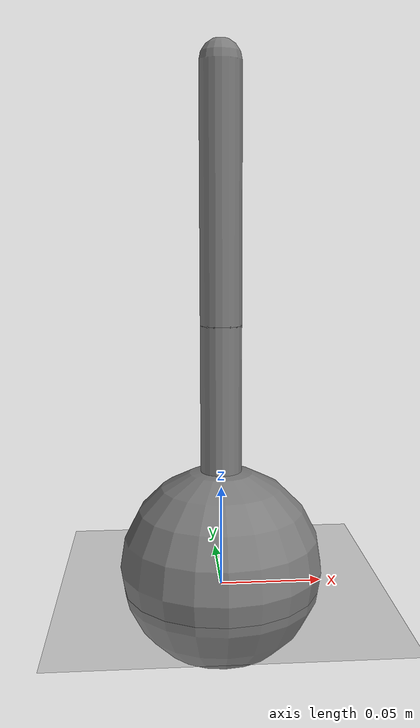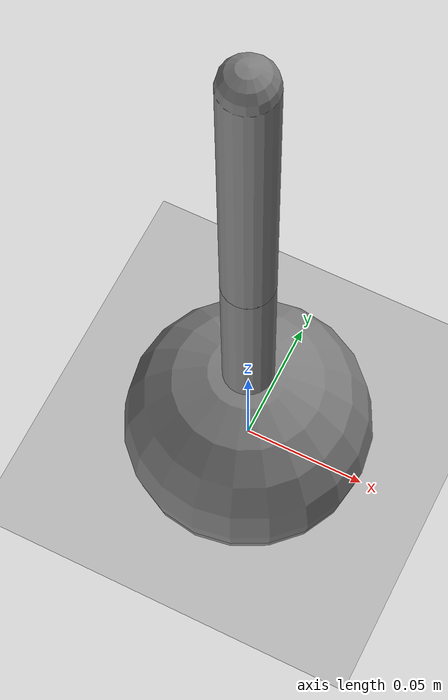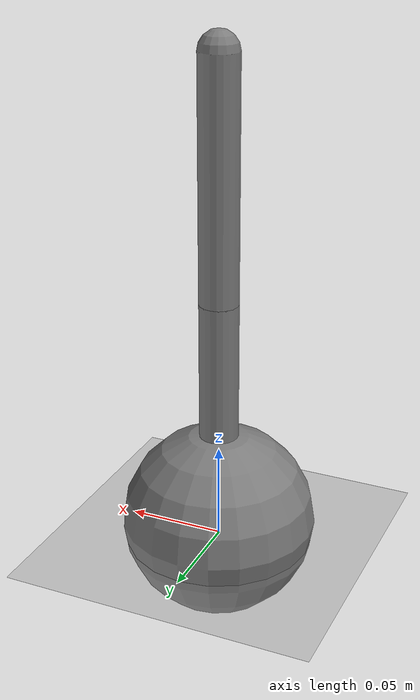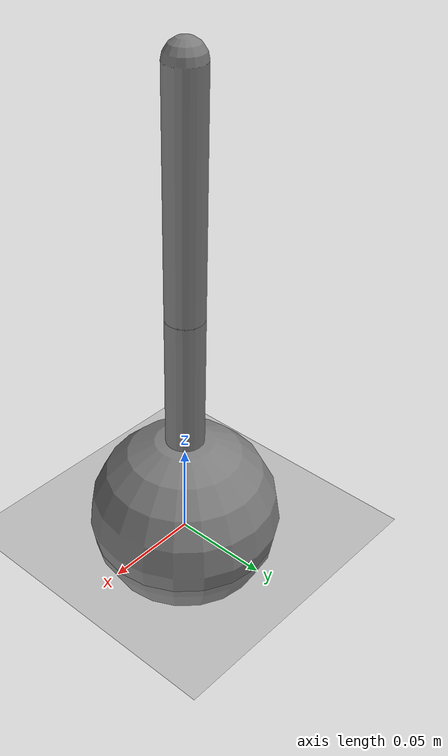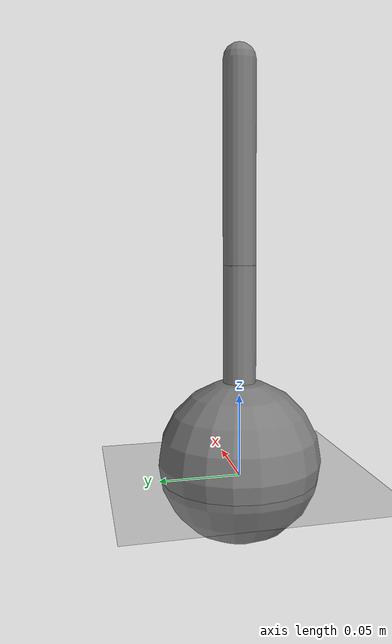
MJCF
<mujoco model="weevil_single_leg_basic">
  <option timestep="0.001" gravity="0 0 -1.62"/>
  <worldbody>
    <geom name="ground" type="plane" size="0 0 0.1"/>
    <body name="leg_root" pos="0 0 0.25">
      <joint name="hip" type="hinge" axis="0 1 0" range="-45 45"/>
      <geom name="upper" type="capsule" fromto="0 0 0 0 0 -0.12" size="0.01"/>
      <body name="lower" pos="0 0 -0.12">
        <joint name="knee" type="hinge" axis="0 1 0" range="-90 0"/>
        <geom name="lower_geom" type="capsule" fromto="0 0 0 0 0 -0.12" size="0.01"/>
        <body name="foot" pos="0 0 -0.12">
          <geom name="foot_geom" type="sphere" size="0.05"/>
        </body>
      </body>
    </body>
  </worldbody>
</mujoco>
